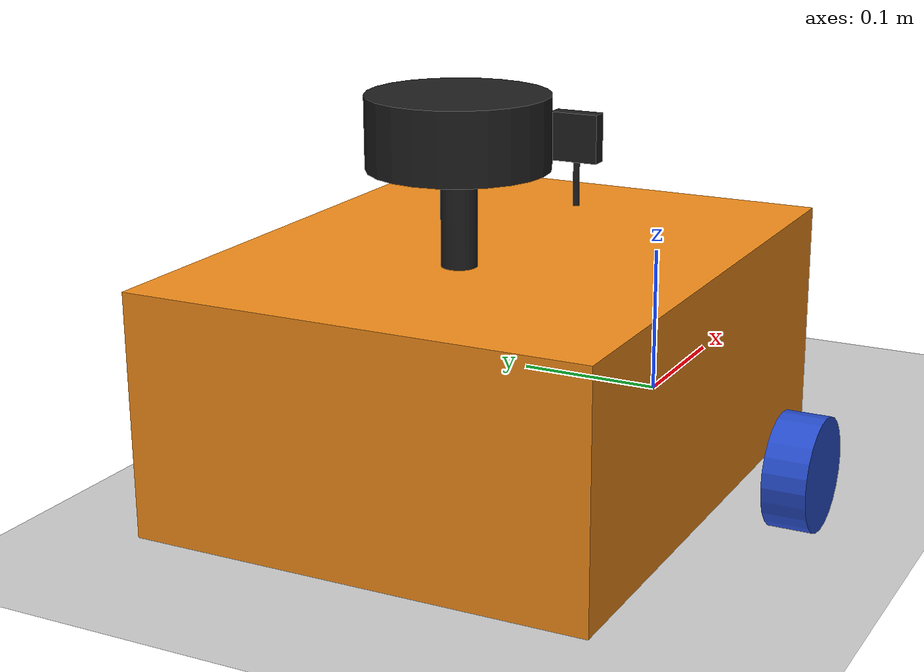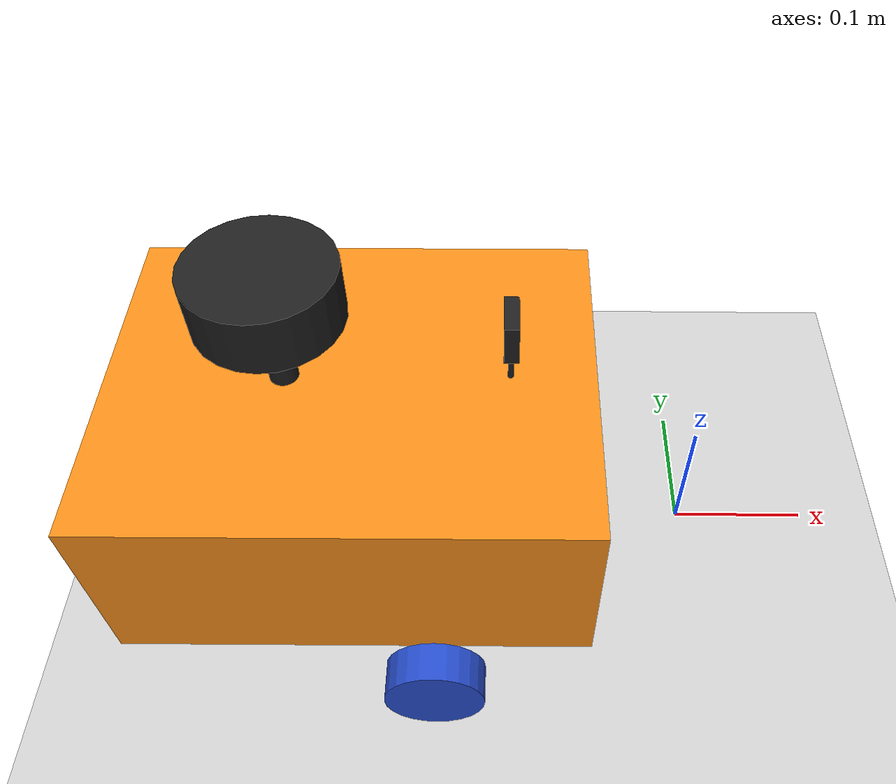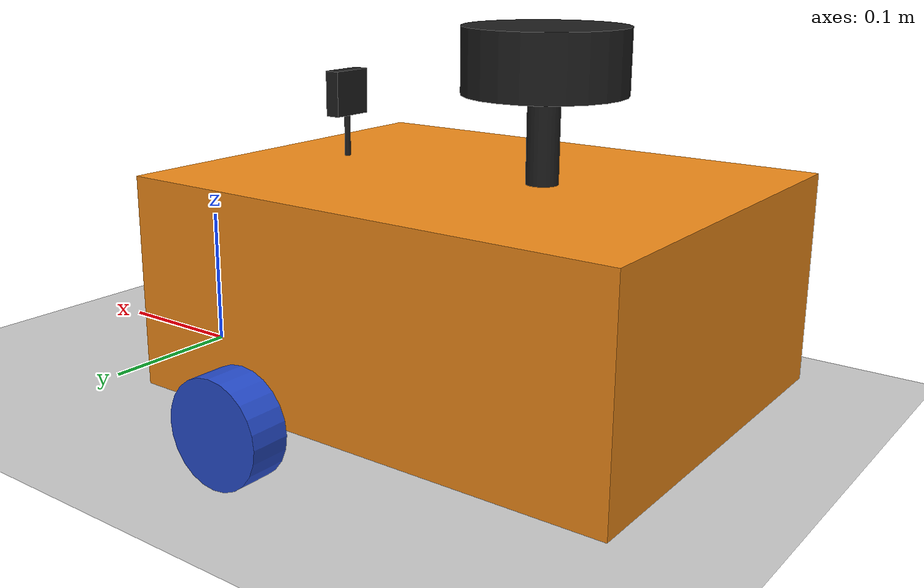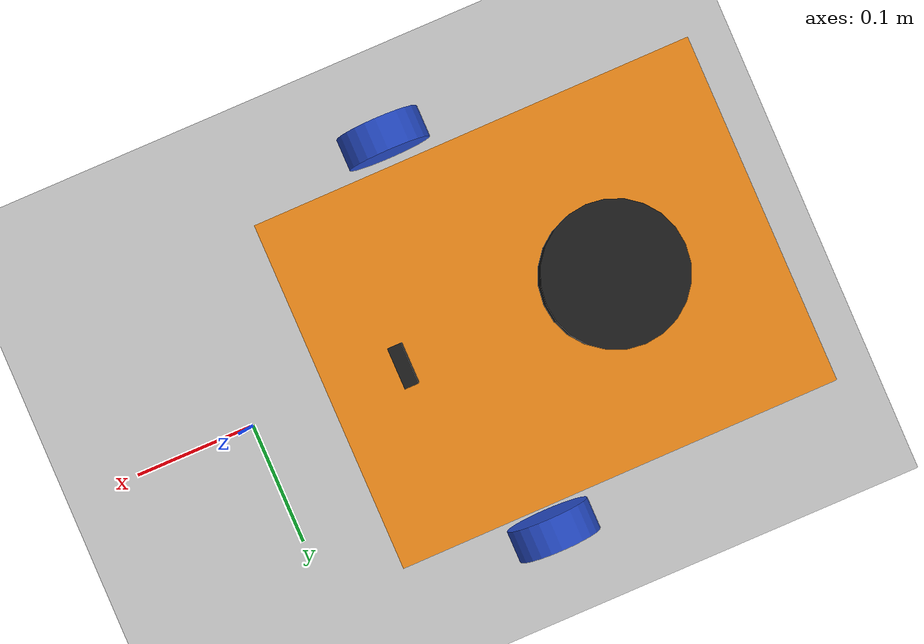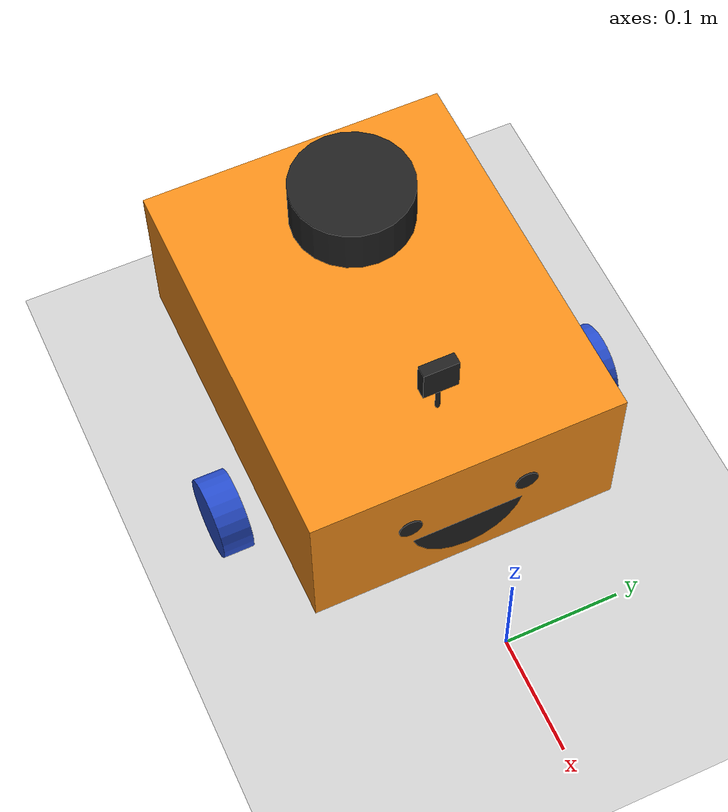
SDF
<sdf version="1.7">
 <world name="default">
  <light name="sun" type="directional">
   <pose>0 0 10 0 -0 0</pose>
   <diffuse>0.8 0.8 0.8 1</diffuse>
   <specular>0.2 0.2 0.2 1</specular>
   <attenuation>
    <range>1000</range>
    <constant>0.9</constant>
    <linear>0.01</linear>
    <quadratic>0.001</quadratic>
   </attenuation>
   <direction>-0.5 0.1 -0.9</direction>
   <spot><inner_angle>0</inner_angle><outer_angle>0</outer_angle><falloff>0</falloff></spot>
  </light>
  <model name="ground_plane">
   <static>1</static>
   <link name="link">
    <collision name="collision">
     <geometry><plane><normal>0 0 1</normal><size>100 100</size></plane></geometry>
     <surface>
      <contact><collide_bitmask>65535</collide_bitmask></contact>
      <friction><ode><mu>100</mu><mu2>50</mu2></ode></friction>
     </surface>
    </collision>
    <visual name="visual">
     <cast_shadows>0</cast_shadows>
     <geometry><plane><normal>0 0 1</normal><size>100 100</size></plane></geometry>
     <material>
      <script><uri>file://media/materials/scripts/gazebo.material</uri><name>Gazebo/Grey</name></script>
     </material>
    </visual>
   </link>
  </model>
  <gravity>0 0 -9.8</gravity>
  <magnetic_field>6e-06 2.3e-05 -4.2e-05</magnetic_field>
  <atmosphere type="adiabatic"/>
  <physics type="ode">
   <max_step_size>0.001</max_step_size>
   <real_time_factor>1</real_time_factor>
   <real_time_update_rate>1000</real_time_update_rate>
  </physics>
  <scene><ambient>0.4 0.4 0.4 1</ambient><background>0.7 0.7 0.7 1</background><shadows>1</shadows></scene>
  <spherical_coordinates>
   <surface_model>EARTH_WGS84</surface_model>
   <latitude_deg>0</latitude_deg>
   <longitude_deg>0</longitude_deg>
   <elevation>0</elevation>
   <heading_deg>0</heading_deg>
  </spherical_coordinates>
  <model name="my_bot">
   <link name="base_link">
    <inertial>
     <pose>-0.067475 0 0.081082 0 -0 0</pose>
     <mass>0.61</mass>
     <inertia>
      <ixx>0.00561212</ixx>
      <ixy>0</ixy>
      <ixz>0.000452976</ixz>
      <iyy>0.00760557</iyy>
      <iyz>0</iyz>
      <izz>0.00797093</izz>
     </inertia>
    </inertial>
    <collision name="base_link_fixed_joint_lump__chassis_collision">
     <pose>-0.0585 0 0.059 0 -0 0</pose>
     <geometry><box><size>0.335 0.265 0.138</size></box></geometry>
    </collision>
    <collision name="base_link_fixed_joint_lump__caster_wheel_collision_1">
     <pose>-0.151 0 -0.024 0 -0 0</pose>
     <geometry><sphere><radius>0.01</radius></sphere></geometry>
     <surface><friction><ode><mu>0.001</mu><mu2>0.001</mu2></ode></friction></surface>
    </collision>
    <collision name="base_link_fixed_joint_lump__laser_frame_collision_2">
     <pose>-0.104 0 0.202 0 -0 0</pose>
     <geometry><cylinder><length>0.04</length><radius>0.05</radius></cylinder></geometry>
    </collision>
    <visual name="base_link_fixed_joint_lump__chassis_visual">
     <pose>-0.0585 0 0.059 0 -0 0</pose>
     <geometry><box><size>0.335 0.265 0.138</size></box></geometry>
     <material>
      <script><name>Gazebo/Orange</name><uri>file://media/materials/scripts/gazebo.material</uri></script>
     </material>
    </visual>
    <visual name="base_link_fixed_joint_lump__camera_link_visual_1">
     <pose>0.05 0 0.171 0 -0 0</pose>
     <geometry><box><size>0.01 0.03 0.03</size></box></geometry>
     <material>
      <script><name>Gazebo/Black</name><uri>file://media/materials/scripts/gazebo.material</uri></script>
     </material>
    </visual>
    <visual name="base_link_fixed_joint_lump__camera_link_visual_2">
     <pose>0.05 0 0.121 0 -0 0</pose>
     <geometry><cylinder><length>0.1</length><radius>0.002</radius></cylinder></geometry>
     <material>
      <script><name>Gazebo/Black</name><uri>file://media/materials/scripts/gazebo.material</uri></script>
     </material>
    </visual>
    <visual name="base_link_fixed_joint_lump__caster_wheel_visual_3">
     <pose>-0.151 0 -0.024 0 -0 0</pose>
     <geometry><sphere><radius>0.01</radius></sphere></geometry>
     <material>
      <script><name>Gazebo/White</name><uri>file://media/materials/scripts/gazebo.material</uri></script>
     </material>
    </visual>
    <visual name="base_link_fixed_joint_lump__face_link_visual_4">
     <pose>0.109 0.05 0.069 3.14159 1.57079 3.14159</pose>
     <geometry><cylinder><length>0.002</length><radius>0.01</radius></cylinder></geometry>
     <material>
      <script><name>Gazebo/Black</name><uri>file://media/materials/scripts/gazebo.material</uri></script>
     </material>
    </visual>
    <visual name="base_link_fixed_joint_lump__face_link_visual_5">
     <pose>0.109 -0.05 0.069 3.14159 1.57079 3.14159</pose>
     <geometry><cylinder><length>0.002</length><radius>0.01</radius></cylinder></geometry>
     <material>
      <script><name>Gazebo/Black</name><uri>file://media/materials/scripts/gazebo.material</uri></script>
     </material>
    </visual>
    <visual name="base_link_fixed_joint_lump__face_link_visual_6">
     <pose>0.098 0 0.059 0 1.5 0</pose>
     <geometry><cylinder><length>0.02</length><radius>0.05</radius></cylinder></geometry>
     <material>
      <script><name>Gazebo/Black</name><uri>file://media/materials/scripts/gazebo.material</uri></script>
     </material>
    </visual>
    <visual name="base_link_fixed_joint_lump__laser_frame_visual_7">
     <pose>-0.104 0 0.202 0 -0 0</pose>
     <geometry><cylinder><length>0.04</length><radius>0.05</radius></cylinder></geometry>
     <material>
      <script><name>Gazebo/Black</name><uri>file://media/materials/scripts/gazebo.material</uri></script>
     </material>
    </visual>
    <visual name="base_link_fixed_joint_lump__laser_frame_visual_8">
     <pose>-0.104 0 0.152 0 -0 0</pose>
     <geometry><cylinder><length>0.1</length><radius>0.01</radius></cylinder></geometry>
     <material>
      <script><name>Gazebo/Black</name><uri>file://media/materials/scripts/gazebo.material</uri></script>
     </material>
    </visual>
    <sensor name="camera" type="camera">
     <visualize>1</visualize>
     <update_rate>10</update_rate>
     <camera>
      <horizontal_fov>1.089</horizontal_fov>
      <image><format>R8G8B8</format><width>640</width><height>480</height></image>
      <clip><near>0.05</near><far>8</far></clip>
     </camera>
     <plugin name="camera_controller" filename="libgazebo_ros_camera.so">
      <frame_name>camera_link_optical</frame_name>
     </plugin>
     <pose>0.05 0 0.171 0 -0 0</pose>
    </sensor>
    <sensor name="laser" type="ray">
     <visualize>0</visualize>
     <update_rate>10</update_rate>
     <ray>
      <scan>
       <horizontal>
        <samples>360</samples>
        <min_angle>-3.14</min_angle>
        <max_angle>3.14</max_angle>
        <resolution>1</resolution>
       </horizontal>
       <vertical><samples>1</samples><min_angle>0</min_angle><max_angle>0</max_angle></vertical>
      </scan>
      <range><min>0.3</min><max>12</max></range>
     </ray>
     <plugin name="laser_controller" filename="libgazebo_ros_ray_sensor.so">
      <ros><argument>~/out:=scan</argument></ros>
      <output_type>sensor_msgs/LaserScan</output_type>
      <frame_name>laser_frame</frame_name>
     </plugin>
     <pose>-0.104 0 0.202 0 -0 0</pose>
    </sensor>
   </link>
   <joint name="left_wheel_joint" type="revolute">
    <pose relative_to="base_link">0 0.166 0 -1.5708 0 0</pose>
    <parent>base_link</parent>
    <child>left_wheel</child>
    <axis>
     <xyz>0 0 1</xyz>
     <limit><lower>-1e+16</lower><upper>1e+16</upper></limit>
     <dynamics><spring_reference>0</spring_reference><spring_stiffness>0</spring_stiffness></dynamics>
    </axis>
   </joint>
   <link name="left_wheel">
    <pose relative_to="left_wheel_joint">0 0 0 0 -0 0</pose>
    <inertial>
     <mass>0.05</mass>
     <inertia>
      <ixx>1.72667e-05</ixx>
      <ixy>0</ixy>
      <ixz>0</ixz>
      <iyy>1.72667e-05</iyy>
      <iyz>0</iyz>
      <izz>2.89e-05</izz>
     </inertia>
    </inertial>
    <collision name="left_wheel_collision">
     <geometry><sphere><radius>0.034</radius></sphere></geometry>
    </collision>
    <visual name="left_wheel_visual">
     <geometry><cylinder><length>0.026</length><radius>0.034</radius></cylinder></geometry>
     <material>
      <script><name>Gazebo/Blue</name><uri>file://media/materials/scripts/gazebo.material</uri></script>
     </material>
    </visual>
   </link>
   <joint name="right_wheel_joint" type="revolute">
    <pose relative_to="base_link">0 -0.166 0 1.5708 -0 0</pose>
    <parent>base_link</parent>
    <child>right_wheel</child>
    <axis>
     <xyz>0 0 -1</xyz>
     <limit><lower>-1e+16</lower><upper>1e+16</upper></limit>
     <dynamics><spring_reference>0</spring_reference><spring_stiffness>0</spring_stiffness></dynamics>
    </axis>
   </joint>
   <link name="right_wheel">
    <pose relative_to="right_wheel_joint">0 0 0 0 -0 0</pose>
    <inertial>
     <mass>0.05</mass>
     <inertia>
      <ixx>1.72667e-05</ixx>
      <ixy>0</ixy>
      <ixz>0</ixz>
      <iyy>1.72667e-05</iyy>
      <iyz>0</iyz>
      <izz>2.89e-05</izz>
     </inertia>
    </inertial>
    <collision name="right_wheel_collision">
     <geometry><sphere><radius>0.034</radius></sphere></geometry>
    </collision>
    <visual name="right_wheel_visual">
     <geometry><cylinder><length>0.026</length><radius>0.034</radius></cylinder></geometry>
     <material>
      <script><name>Gazebo/Blue</name><uri>file://media/materials/scripts/gazebo.material</uri></script>
     </material>
    </visual>
   </link>
   <plugin name="gazebo_ros2_control" filename="libgazebo_ros2_control.so">
    <parameters>/home/sancross354/articubot_TA/install/articubot_TA/share/articubot_TA/config/my_controllers.yaml</parameters>
   </plugin>
   <frame name="camera_optical_joint" attached_to="camera_link"><pose>0 0 0 -1.5708 -0 -1.5708</pose></frame>
   <frame name="camera_link_optical" attached_to="camera_optical_joint"/>
   <frame name="camera_joint" attached_to="chassis"><pose>0.276 0 0.181 0 -0 0</pose></frame>
   <frame name="camera_link" attached_to="camera_joint"/>
   <frame name="caster_wheel_joint" attached_to="chassis"><pose>0.075 0 -0.014 0 -0 0</pose></frame>
   <frame name="caster_wheel" attached_to="caster_wheel_joint"/>
   <frame name="face_joint" attached_to="chassis"><pose>0.335 0 0.069 0 -0 0</pose></frame>
   <frame name="face_link" attached_to="face_joint"/>
   <frame name="laser_joint" attached_to="chassis"><pose>0.122 0 0.212 0 -0 0</pose></frame>
   <frame name="laser_frame" attached_to="laser_joint"/>
   <frame name="chassis_joint" attached_to="base_link"><pose>-0.226 0 -0.01 0 -0 0</pose></frame>
   <frame name="chassis" attached_to="chassis_joint"/>
   <pose>-0.186204 6.3e-05 0.033997 -1.7e-05 2.1e-05 0.004514</pose>
  </model>
 </world>
</sdf>
